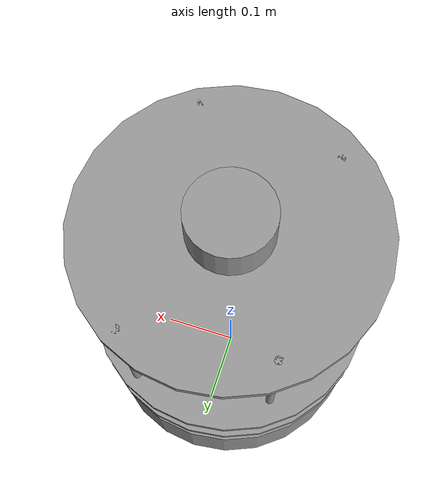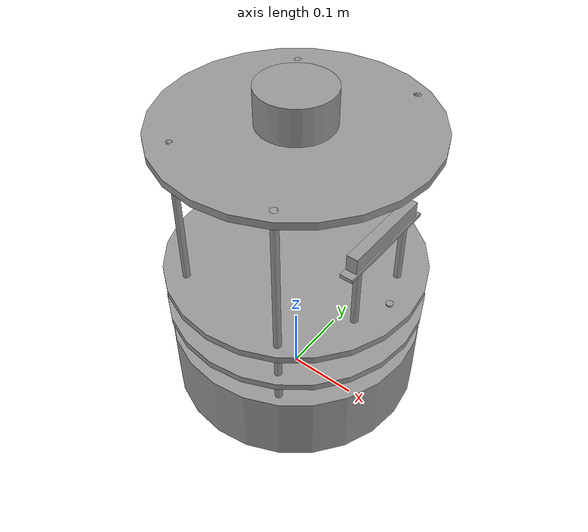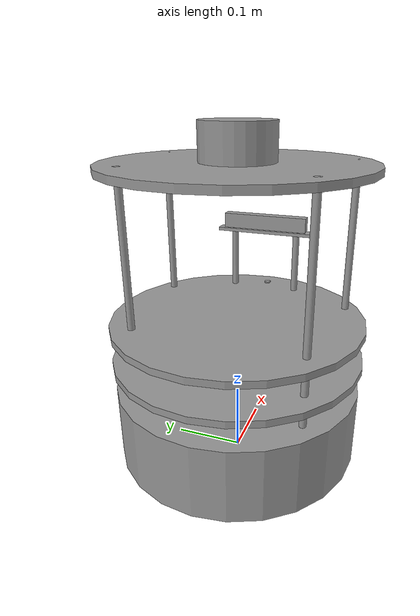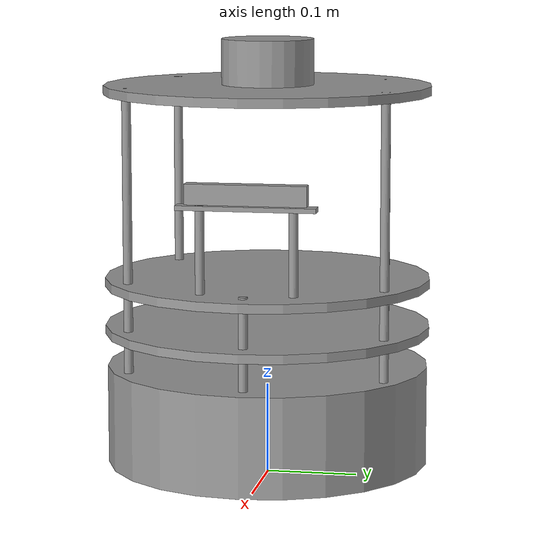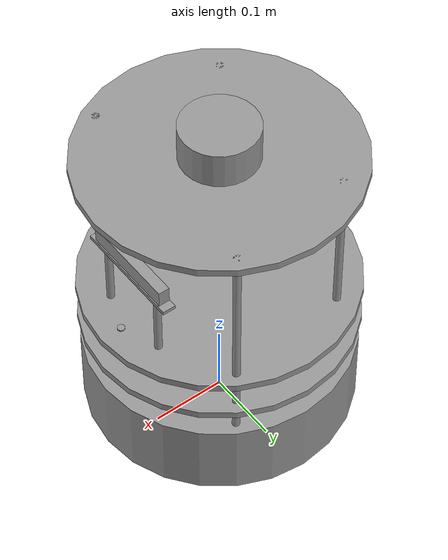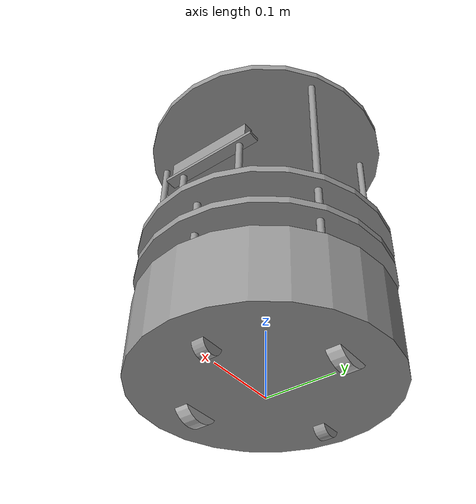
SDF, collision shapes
<?xml version="1.0" ?>
<sdf version='1.10'>
  <model name='turtlebot2'>
    <link name='base_footprint'>
      <inertial>
        <pose>0 -0.1 0.95 0 0 0</pose>
        <mass>80.0</mass>
        <inertia>
          <ixx>24.88</ixx>
          <ixy>0</ixy>
          <ixz>0</ixz>
          <iyy>25.73</iyy>
          <iyz>0</iyz>
          <izz>2.48</izz>
        </inertia>
      </inertial>

      <collision name='base_footprint_fixed_joint_lump__base_collision'>
        <pose>0 0 0.069690000000000002 0 0 0</pose>
        <geometry>
          <cylinder>
            <length>0.10938000000000001</length>
            <radius>0.17799999999999999</radius>
          </cylinder>
        </geometry>
      </collision>
      <collision name='base_footprint_fixed_joint_lump__base_collision_1'>
        <pose>0.080000000000000002 0.14000000000000001 0.26019999999999999 0 0 0</pose>
        <geometry>
          <cylinder>
            <length>0.34999999999999998</length>
            <radius>0.0050000000000000001</radius>
          </cylinder>
        </geometry>
      </collision>
      <collision name='base_footprint_fixed_joint_lump__base_collision_2'>
        <pose>-0.089999999999999997 0.12 0.26019999999999999 0 0 0</pose>
        <geometry>
          <cylinder>
            <length>0.34999999999999998</length>
            <radius>0.0050000000000000001</radius>
          </cylinder>
        </geometry>
      </collision>
      <collision name='base_footprint_fixed_joint_lump__base_collision_3'>
        <pose>-0.089999999999999997 -0.12 0.26019999999999999 0 0 0</pose>
        <geometry>
          <cylinder>
            <length>0.34999999999999998</length>
            <radius>0.0050000000000000001</radius>
          </cylinder>
        </geometry>
      </collision>
      <collision name='base_footprint_fixed_joint_lump__base_collision_4'>
        <pose>0.080000000000000002 -0.14000000000000001 0.26019999999999999 0 0 0</pose>
        <geometry>
          <cylinder>
            <length>0.34999999999999998</length>
            <radius>0.0050000000000000001</radius>
          </cylinder>
        </geometry>
      </collision>
      <collision name='base_footprint_fixed_joint_lump__base_collision_5'>
        <pose>0.14999999999999999 0 0.1502 0 0 0</pose>
        <geometry>
          <cylinder>
            <length>0.14999999999999999</length>
            <radius>0.0050000000000000001</radius>
          </cylinder>
        </geometry>
      </collision>
      <collision name='base_footprint_fixed_joint_lump__camera_link_collision_6'>
        <pose>0.13 0 0.33019999999999999 0 0 0</pose>
        <geometry>
          <box>
            <size>0.014999999999999999 0.13 0.021999999999999999</size>
          </box>
        </geometry>
        <surface>
          <contact>
            <ode/>
          </contact>
          <friction>
            <ode/>
          </friction>
        </surface>
      </collision>
      <collision name='base_footprint_fixed_joint_lump__caster_back_link_collision_7'>
        <pose>-0.13500000000000001 0 0.019199999999999998 -1.5707963267948959 0 0</pose>
        <geometry>
          <cylinder>
            <length>0.017600000000000001</length>
            <radius>0.017000000000000001</radius>
          </cylinder>
        </geometry>
        <surface>
          <contact>
            <ode>
              <kp>1000000</kp>
              <kd>100</kd>
              <max_vel>1</max_vel>
              <min_depth>0.001</min_depth>
            </ode>
          </contact>
          <friction>
            <ode>
              <mu>0</mu>
              <mu2>0</mu2>
            </ode>
          </friction>
        </surface>
      </collision>
      <collision name='base_footprint_fixed_joint_lump__caster_front_link_collision_8'>
        <pose>0.115 0 0.0172 -1.5707963267948959 0 0</pose>
        <geometry>
          <cylinder>
            <length>0.017600000000000001</length>
            <radius>0.017000000000000001</radius>
          </cylinder>
        </geometry>
        <surface>
          <contact>
            <ode>
              <kp>1000000</kp>
              <kd>100</kd>
              <max_vel>1</max_vel>
              <min_depth>0.001</min_depth>
            </ode>
          </contact>
          <friction>
            <ode>
              <mu>0</mu>
              <mu2>0</mu2>
            </ode>
          </friction>
        </surface>
      </collision>
      <collision name='base_footprint_fixed_joint_lump__base_collision_9'>
        <pose>0 0 0.16520000000000001 0 0 0</pose>
        <geometry>
          <cylinder>
            <length>0.01</length>
            <radius>0.17999999999999999</radius>
          </cylinder>
        </geometry>
      </collision>
      <collision name='base_footprint_fixed_joint_lump__base_collision_10'>
        <pose>0 0 0.21820000000000001 0 0 0</pose>
        <geometry>
          <cylinder>
            <length>0.01</length>
            <radius>0.17999999999999999</radius>
          </cylinder>
        </geometry>
      </collision>
      <collision name='base_footprint_fixed_joint_lump__base_collision_11'>
        <pose>0.13 0 0.31569999999999998 0 0 0</pose>
        <geometry>
          <box>
            <size>0.017500000000000002 0.14999999999999999 0.0050000000000000001</size>
          </box>
        </geometry>
      </collision>
      <collision name='base_footprint_fixed_joint_lump__base_collision_12'>
        <pose>0.13 0.050000000000000003 0.26819999999999999 0 0 0</pose>
        <geometry>
          <cylinder>
            <length>0.10000000000000001</length>
            <radius>0.0050000000000000001</radius>
          </cylinder>
        </geometry>
      </collision>
      <collision name='base_footprint_fixed_joint_lump__base_collision_13'>
        <pose>0.13 -0.050000000000000003 0.26819999999999999 0 0 0</pose>
        <geometry>
          <cylinder>
            <length>0.10000000000000001</length>
            <radius>0.0050000000000000001</radius>
          </cylinder>
        </geometry>
      </collision>
      <collision name='base_footprint_fixed_joint_lump__base_collision_14'>
        <pose>0 0 0.43020000000000003 0 0 0</pose>
        <geometry>
          <cylinder>
            <length>0.01</length>
            <radius>0.17999999999999999</radius>
          </cylinder>
        </geometry>
      </collision>
      <collision name='base_footprint_fixed_joint_lump__lidar_link_collision_15'>
        <pose>0 0 0.4577 0 0 0</pose>
        <geometry>
          <cylinder>
            <length>0.055</length>
            <radius>0.050799999999999998</radius>
          </cylinder>
        </geometry>
        <surface>
          <contact>
            <ode/>
          </contact>
          <friction>
            <ode/>
          </friction>
        </surface>
      </collision>
      <visual name='base_footprint_fixed_joint_lump__base_link_visual'>
        <pose>0.001 0 0.062190000000000002 0 0 0</pose>
        <geometry>
          <mesh>
            <scale>1 1 1</scale>
            <uri>model://kobuki_description/meshes/main_body.dae</uri>
          </mesh>
        </geometry>
      </visual>
      <visual name='base_footprint_fixed_joint_lump__base_tick1_link_visual_1'>
        <pose>0.080000000000000002 0.14000000000000001 0.26019999999999999 0 0 0</pose>
        <geometry>
          <cylinder>
            <length>0.34999999999999998</length>
            <radius>0.0050000000000000001</radius>
          </cylinder>
        </geometry>
        <material>
          <script>
            <name>Gazebo/Gray</name>
            <uri>file://media/materials/scripts/gazebo.material</uri>
          </script>
        </material>
      </visual>
      <visual name='base_footprint_fixed_joint_lump__base_tick2_link_visual_2'>
        <pose>-0.089999999999999997 0.12 0.26019999999999999 0 0 0</pose>
        <geometry>
          <cylinder>
            <length>0.34999999999999998</length>
            <radius>0.0050000000000000001</radius>
          </cylinder>
        </geometry>
        <material>
          <script>
            <name>Gazebo/Gray</name>
            <uri>file://media/materials/scripts/gazebo.material</uri>
          </script>
        </material>
      </visual>
      <visual name='base_footprint_fixed_joint_lump__base_tick3_link_visual_3'>
        <pose>-0.089999999999999997 -0.12 0.26019999999999999 0 0 0</pose>
        <geometry>
          <cylinder>
            <length>0.34999999999999998</length>
            <radius>0.0050000000000000001</radius>
          </cylinder>
        </geometry>
        <material>
          <script>
            <name>Gazebo/Gray</name>
            <uri>file://media/materials/scripts/gazebo.material</uri>
          </script>
        </material>
      </visual>
      <visual name='base_footprint_fixed_joint_lump__base_tick4_link_visual_4'>
        <pose>0.080000000000000002 -0.14000000000000001 0.26019999999999999 0 0 0</pose>
        <geometry>
          <cylinder>
            <length>0.34999999999999998</length>
            <radius>0.0050000000000000001</radius>
          </cylinder>
        </geometry>
        <material>
          <script>
            <name>Gazebo/Gray</name>
            <uri>file://media/materials/scripts/gazebo.material</uri>
          </script>
        </material>
      </visual>
      <visual name='base_footprint_fixed_joint_lump__base_tick5_link_visual_5'>
        <pose>0.14999999999999999 0 0.1502 0 0 0</pose>
        <geometry>
          <cylinder>
            <length>0.14999999999999999</length>
            <radius>0.0050000000000000001</radius>
          </cylinder>
        </geometry>
        <material>
          <script>
            <name>Gazebo/Gray</name>
            <uri>file://media/materials/scripts/gazebo.material</uri>
          </script>
        </material>
      </visual>
      <visual name='base_footprint_fixed_joint_lump__camera_link_visual_6'>
        <pose>0.13 0 0.33019999999999999 0 0 0</pose>
        <geometry>
          <box>
            <size>0.014999999999999999 0.13 0.021999999999999999</size>
          </box>
        </geometry>
        <material>
          <script>
            <name>Gazebo/Black</name>
            <uri>file://media/materials/scripts/gazebo.material</uri>
          </script>
        </material>
      </visual>
      <visual name='base_footprint_fixed_joint_lump__lower_base_link_visual_7'>
        <pose>0 0 0.16520000000000001 0 0 0</pose>
        <geometry>
          <cylinder>
            <length>0.01</length>
            <radius>0.17999999999999999</radius>
          </cylinder>
        </geometry>
        <material>
          <script>
            <name>Gazebo/DarkGrey</name>
            <uri>file://media/materials/scripts/gazebo.material</uri>
          </script>
        </material>
      </visual>
      <visual name='base_footprint_fixed_joint_lump__middle_base_link_visual_8'>
        <pose>0 0 0.21820000000000001 0 0 0</pose>
        <geometry>
          <cylinder>
            <length>0.01</length>
            <radius>0.17999999999999999</radius>
          </cylinder>
        </geometry>
        <material>
          <script>
            <name>Gazebo/DarkGrey</name>
            <uri>file://media/materials/scripts/gazebo.material</uri>
          </script>
        </material>
      </visual>
      <visual name='base_footprint_fixed_joint_lump__camera_support_base_link_visual_9'>
        <pose>0.13 0 0.31569999999999998 0 0 0</pose>
        <geometry>
          <box>
            <size>0.017500000000000002 0.14999999999999999 0.0050000000000000001</size>
          </box>
        </geometry>
        <material>
          <script>
            <name>Gazebo/DarkGrey</name>
            <uri>file://media/materials/scripts/gazebo.material</uri>
          </script>
        </material>
      </visual>
      <visual name='base_footprint_fixed_joint_lump__camera_support_tick1_link_visual_10'>
        <pose>0.13 0.050000000000000003 0.26819999999999999 0 0 0</pose>
        <geometry>
          <cylinder>
            <length>0.10000000000000001</length>
            <radius>0.0050000000000000001</radius>
          </cylinder>
        </geometry>
        <material>
          <script>
            <name>Gazebo/Gray</name>
            <uri>file://media/materials/scripts/gazebo.material</uri>
          </script>
        </material>
      </visual>
      <visual name='base_footprint_fixed_joint_lump__camera_support_tick2_link_visual_11'>
        <pose>0.13 -0.050000000000000003 0.26819999999999999 0 0 0</pose>
        <geometry>
          <cylinder>
            <length>0.10000000000000001</length>
            <radius>0.0050000000000000001</radius>
          </cylinder>
        </geometry>
        <material>
          <script>
            <name>Gazebo/Gray</name>
            <uri>file://media/materials/scripts/gazebo.material</uri>
          </script>
        </material>
      </visual>
      <visual name='base_footprint_fixed_joint_lump__upper_base_link_visual_12'>
        <pose>0 0 0.43020000000000003 0 0 0</pose>
        <geometry>
          <cylinder>
            <length>0.01</length>
            <radius>0.17999999999999999</radius>
          </cylinder>
        </geometry>
        <material>
          <script>
            <name>Gazebo/DarkGrey</name>
            <uri>file://media/materials/scripts/gazebo.material</uri>
          </script>
        </material>
      </visual>
      <visual name='base_footprint_fixed_joint_lump__lidar_link_visual_13'>
        <pose>0 0 0.4577 0 0 0</pose>
        <geometry>
          <cylinder>
            <length>0.055</length>
            <radius>0.050799999999999998</radius>
          </cylinder>
        </geometry>
        <material>
          <script>
            <name>Gazebo/Black</name>
            <uri>file://media/materials/scripts/gazebo.material</uri>
          </script>
        </material>
      </visual>
      <sensor name='bumpers' type='contact'>
        <always_on>true</always_on>
        <update_rate>50</update_rate>
        <visualize>true</visualize>
        <contact>
          <collision>base_footprint_fixed_joint_lump__base_collision</collision>
          <topic>__default_topic__</topic>
        </contact>
        <pose>0 0 0.010200000000000001 0 0 0</pose>
      </sensor>
      <sensor name='depth_camera' type='depth'>
        <visualize>true</visualize>
        <update_rate>30</update_rate>
        <camera name='camera'>
          <horizontal_fov>1.0471980000000001</horizontal_fov>
          <image>
            <width>640</width>
            <height>480</height>
            <format>R8G8B8</format>
          </image>
          <clip>
            <near>0.050000000000000003</near>
            <far>6</far>
          </clip>
        </camera>
        <plugin name='depth_camera_controller' filename='libgazebo_ros_camera.so'>
          <baseline>0.2</baseline>
          <alwaysOn>true</alwaysOn>
          <updateRate>0.0</updateRate>
          <frame_name>camera_depth_frame</frame_name>
          <pointCloudCutoff>0.5</pointCloudCutoff>
          <pointCloudCutoffMax>6.0</pointCloudCutoffMax>
          <distortionK1>0</distortionK1>
          <distortionK2>0</distortionK2>
          <distortionK3>0</distortionK3>
          <distortionT1>0</distortionT1>
          <distortionT2>0</distortionT2>
          <CxPrime>0</CxPrime>
          <Cx>0</Cx>
          <Cy>0</Cy>
          <focalLength>0</focalLength>
          <hackBaseline>0</hackBaseline>
        </plugin>
        <pose>0.13 0 0.33019999999999999 0 0 0</pose>
      </sensor>
      <sensor name='cliff_sensor_front' type='ray'>
        <always_on>true</always_on>
        <update_rate>50</update_rate>
        <visualize>true</visualize>
        <ray>
          <scan>
            <horizontal>
              <samples>50</samples>
              <resolution>1</resolution>
              <min_angle>-0.0436</min_angle>
              <max_angle>0.0436</max_angle>
            </horizontal>
          </scan>
          <range>
            <min>0.01</min>
            <max>0.14999999999999999</max>
            <resolution>1</resolution>
          </range>
        </ray>
        <pose>0.156 0 0.031600000000000003 3.1415926535897931 1.5707926536359933 3.1415926535897931</pose>
      </sensor>
      <sensor name='cliff_sensor_left' type='ray'>
        <always_on>true</always_on>
        <update_rate>50</update_rate>
        <visualize>true</visualize>
        <ray>
          <scan>
            <horizontal>
              <samples>50</samples>
              <resolution>1</resolution>
              <min_angle>-0.0436</min_angle>
              <max_angle>0.0436</max_angle>
            </horizontal>
          </scan>
          <range>
            <min>0.01</min>
            <max>0.14999999999999999</max>
            <resolution>1</resolution>
          </range>
        </ray>
        <pose>0.087340000000000001 0.13600999999999999 0.031600000000000003 3.1415926535897931 1.5707926536359933 3.1415926535897931</pose>
      </sensor>
      <sensor name='cliff_sensor_right' type='ray'>
        <always_on>true</always_on>
        <update_rate>50</update_rate>
        <visualize>true</visualize>
        <ray>
          <scan>
            <horizontal>
              <samples>50</samples>
              <resolution>1</resolution>
              <min_angle>-0.0436</min_angle>
              <max_angle>0.0436</max_angle>
            </horizontal>
          </scan>
          <range>
            <min>0.01</min>
            <max>0.14999999999999999</max>
            <resolution>1</resolution>
          </range>
        </ray>
        <pose>0.085000000000000006 -0.13600999999999999 0.031600000000000003 3.1415926535897931 1.5707926536359933 3.1415926535897931</pose>
      </sensor>
      <sensor name='imu' type='imu'>
        <plugin name='gazebo_ros_imu_controller' filename='libgazebo_ros_imu_sensor.so'>
          <ros>
            <argument>~/out:=imu</argument>
          </ros>
          <output_type>sensor_msgs/msg/Imu</output_type>
          <body_name>gyro_link</body_name>
          <frame_name>gyro_link</frame_name>
        </plugin>
        <always_on>true</always_on>
        <update_rate>50</update_rate>
        <visualize>false</visualize>
        <imu>
          <noise>
            <type>gaussian</type>
            <rate>
              <mean>0.0</mean>
              <stddev>1.96e-06</stddev>
              <bias_mean>0.0</bias_mean>
              <bias_stddev>0.0</bias_stddev>
            </rate>
            <accel>
              <mean>0.0</mean>
              <stddev>1.7e-2</stddev>
              <bias_mean>0.1</bias_mean>
              <bias_stddev>0.001</bias_stddev>
            </accel>
          </noise>
        </imu>
        <pose>0.056000000000000001 0.062 0.0304 0 0 0</pose>
      </sensor>
      <sensor name='lidar' type='ray'>
        <always_on>true</always_on>
        <visualize>true</visualize>
        <update_rate>5</update_rate>
        <ray>
          <scan>
            <horizontal>
              <samples>360</samples>
              <resolution>1</resolution>
              <min_angle>0</min_angle>
              <max_angle>6.2800000000000002</max_angle>
            </horizontal>
          </scan>
          <range>
            <min>0.12</min>
            <max>3.5</max>
            <resolution>0.014999999999999999</resolution>
          </range>
          <noise>
            <type>gaussian</type>
            <mean>0</mean>
            <stddev>0.01</stddev>
          </noise>
        </ray>
        <plugin name='scan' filename='libgazebo_ros_ray_sensor.so'>
          <ros>
            <remapping>~/out:=scan</remapping>
          </ros>
          <output_type>sensor_msgs/LaserScan</output_type>
          <frame_name>lidar_link</frame_name>
        </plugin>
        <pose>0 0 0.4577 0 0 0</pose>
      </sensor>
    </link>
    <joint name='wheel_left_joint' type='revolute'>
      <pose relative_to='base_footprint'>0 0.115 0.035200000000000002 -1.5707963267948959 0 0</pose>
      <parent>base_footprint</parent>
      <child>wheel_left_link</child>
      <axis>
        <xyz>0 0 1</xyz>
        <limit>
          <lower>-inf</lower>
          <upper>inf</upper>
        </limit>
        <dynamics>
          <spring_reference>0</spring_reference>
          <spring_stiffness>0</spring_stiffness>
        </dynamics>
      </axis>
    </joint>
    <link name='wheel_left_link'>
      <pose relative_to='wheel_left_joint'>0 0 0 0 0 0</pose>
      <inertial>
        <pose>0 0 0 0 0 0</pose>
        <mass>0.01</mass>
        <inertia>
          <ixx>0.001</ixx>
          <ixy>0</ixy>
          <ixz>0</ixz>
          <iyy>0.001</iyy>
          <iyz>0</iyz>
          <izz>0.001</izz>
        </inertia>
      </inertial>
      <collision name='wheel_left_link_collision'>
        <pose>0 0 0 0 0 0</pose>
        <geometry>
          <cylinder>
            <length>0.0206</length>
            <radius>0.035000000000000003</radius>
          </cylinder>
        </geometry>
        <surface>
          <contact>
            <ode>
              <kp>1000000</kp>
              <kd>100</kd>
              <max_vel>1</max_vel>
              <min_depth>0.001</min_depth>
            </ode>
          </contact>
          <friction>
            <ode>
              <mu>1</mu>
              <mu2>1</mu2>
            </ode>
          </friction>
        </surface>
      </collision>
      <visual name='wheel_left_link_visual'>
        <pose>0 0 0 0 0 0</pose>
        <geometry>
          <mesh>
            <scale>1 1 1</scale>
            <uri>model://kobuki_description/meshes/wheel.dae</uri>
          </mesh>
        </geometry>
      </visual>
    </link>
    <joint name='wheel_right_joint' type='revolute'>
      <pose relative_to='base_footprint'>0 -0.115 0.035200000000000002 -1.5707963267948959 0 0</pose>
      <parent>base_footprint</parent>
      <child>wheel_right_link</child>
      <axis>
        <xyz>0 0 1</xyz>
        <limit>
          <lower>-inf</lower>
          <upper>inf</upper>
        </limit>
        <dynamics>
          <spring_reference>0</spring_reference>
          <spring_stiffness>0</spring_stiffness>
        </dynamics>
      </axis>
    </joint>
    <link name='wheel_right_link'>
      <pose relative_to='wheel_right_joint'>0 0 0 0 0 0</pose>
      <inertial>
        <pose>0 0 0 0 0 0</pose>
        <mass>0.01</mass>
        <inertia>
          <ixx>0.001</ixx>
          <ixy>0</ixy>
          <ixz>0</ixz>
          <iyy>0.001</iyy>
          <iyz>0</iyz>
          <izz>0.001</izz>
        </inertia>
      </inertial>
      <collision name='wheel_right_link_collision'>
        <pose>0 0 0 0 0 0</pose>
        <geometry>
          <cylinder>
            <length>0.0206</length>
            <radius>0.035000000000000003</radius>
          </cylinder>
        </geometry>
        <surface>
          <contact>
            <ode>
              <kp>1000000</kp>
              <kd>100</kd>
              <max_vel>1</max_vel>
              <min_depth>0.001</min_depth>
            </ode>
          </contact>
          <friction>
            <ode>
              <mu>1</mu>
              <mu2>1</mu2>
            </ode>
          </friction>
        </surface>
      </collision>
      <visual name='wheel_right_link_visual'>
        <pose>0 0 0 0 0 0</pose>
        <geometry>
          <mesh>
            <scale>1 1 1</scale>
            <uri>model://kobuki_description/meshes/wheel.dae</uri>
          </mesh>
        </geometry>
      </visual>
    </link>
    <plugin name='differential_drive_controller' filename='libgazebo_ros_diff_drive.so'>
      <update_rate>10</update_rate>
      <left_joint>wheel_left_joint</left_joint>
      <right_joint>wheel_right_joint</right_joint>
      <wheel_separation>0.230</wheel_separation>
      <wheel_diameter>0.070</wheel_diameter>
      <max_wheel_torque>1.0</max_wheel_torque>
      <max_wheel_acceleration>1.0</max_wheel_acceleration>
      <command_topic>cmd_vel</command_topic>
      <publish_odom>true</publish_odom>
      <publish_odom_tf>true</publish_odom_tf>
      <publish_wheel_tf>true</publish_wheel_tf>
      <odometry_topic>odom</odometry_topic>
      <odometry_frame>odom</odometry_frame>
      <robot_base_frame>base_link</robot_base_frame>
    </plugin>
    <frame name='base_tick1_joint' attached_to='base_link'>
      <pose>0.080000000000000002 0.14000000000000001 0.25 0 0 0</pose>
    </frame>
    <frame name='base_tick1_link' attached_to='base_tick1_joint'>
      <pose>0 0 0 0 0 0</pose>
    </frame>
    <frame name='base_tick2_joint' attached_to='base_link'>
      <pose>-0.089999999999999997 0.12 0.25 0 0 0</pose>
    </frame>
    <frame name='base_tick2_link' attached_to='base_tick2_joint'>
      <pose>0 0 0 0 0 0</pose>
    </frame>
    <frame name='base_tick3_joint' attached_to='base_link'>
      <pose>-0.089999999999999997 -0.12 0.25 0 0 0</pose>
    </frame>
    <frame name='base_tick3_link' attached_to='base_tick3_joint'>
      <pose>0 0 0 0 0 0</pose>
    </frame>
    <frame name='base_tick4_joint' attached_to='base_link'>
      <pose>0.080000000000000002 -0.14000000000000001 0.25 0 0 0</pose>
    </frame>
    <frame name='base_tick4_link' attached_to='base_tick4_joint'>
      <pose>0 0 0 0 0 0</pose>
    </frame>
    <frame name='base_tick5_joint' attached_to='base_link'>
      <pose>0.14999999999999999 0 0.14000000000000001 0 0 0</pose>
    </frame>
    <frame name='base_tick5_link' attached_to='base_tick5_joint'>
      <pose>0 0 0 0 0 0</pose>
    </frame>
    <frame name='camera_depth_joint' attached_to='camera_link'>
      <pose>0 0 0 -1.5707963267948959 -5.5511151231257827e-17 -1.5707963267948959</pose>
    </frame>
    <frame name='camera_depth_frame' attached_to='camera_depth_joint'>
      <pose>0 0 0 0 0 0</pose>
    </frame>
    <frame name='camera_joint' attached_to='base_link'>
      <pose>0.13 0 0.32000000000000001 0 0 0</pose>
    </frame>
    <frame name='camera_link' attached_to='camera_joint'>
      <pose>0 0 0 0 0 0</pose>
    </frame>
    <frame name='caster_back_joint' attached_to='base_link'>
      <pose>-0.13500000000000001 0 0.0089999999999999993 -1.5707963267948959 0 0</pose>
    </frame>
    <frame name='caster_back_link' attached_to='caster_back_joint'>
      <pose>0 0 0 0 0 0</pose>
    </frame>
    <frame name='caster_front_joint' attached_to='base_link'>
      <pose>0.115 0 0.0070000000000000001 -1.5707963267948959 0 0</pose>
    </frame>
    <frame name='caster_front_link' attached_to='caster_front_joint'>
      <pose>0 0 0 0 0 0</pose>
    </frame>
    <frame name='cliff_sensor_front_joint' attached_to='base_link'>
      <pose>0.156 0 0.021399999999999999 0 1.5707963267948966 0</pose>
    </frame>
    <frame name='cliff_sensor_front_link' attached_to='cliff_sensor_front_joint'>
      <pose>0 0 0 0 0 0</pose>
    </frame>
    <frame name='cliff_sensor_left_joint' attached_to='base_link'>
      <pose>0.087340000000000001 0.13600999999999999 0.021399999999999999 0 1.5707963267948966 0</pose>
    </frame>
    <frame name='cliff_sensor_left_link' attached_to='cliff_sensor_left_joint'>
      <pose>0 0 0 0 0 0</pose>
    </frame>
    <frame name='cliff_sensor_right_joint' attached_to='base_link'>
      <pose>0.085000000000000006 -0.13600999999999999 0.021399999999999999 0 1.5707963267948966 0</pose>
    </frame>
    <frame name='cliff_sensor_right_link' attached_to='cliff_sensor_right_joint'>
      <pose>0 0 0 0 0 0</pose>
    </frame>
    <frame name='gyro_joint' attached_to='base_link'>
      <pose>0.056000000000000001 0.062 0.020199999999999999 0 0 0</pose>
    </frame>
    <frame name='gyro_link' attached_to='gyro_joint'>
      <pose>0 0 0 0 0 0</pose>
    </frame>
    <frame name='lower_base_joint' attached_to='base_link'>
      <pose>0 0 0.155 0 0 0</pose>
    </frame>
    <frame name='lower_base_link' attached_to='lower_base_joint'>
      <pose>0 0 0 0 0 0</pose>
    </frame>
    <frame name='camera_support_base_joint' attached_to='middle_base_link'>
      <pose>0.13 0 0.097500000000000003 0 0 0</pose>
    </frame>
    <frame name='camera_support_base_link' attached_to='camera_support_base_joint'>
      <pose>0 0 0 0 0 0</pose>
    </frame>
    <frame name='camera_support_tick1_joint' attached_to='middle_base_link'>
      <pose>0.13 0.050000000000000003 0.050000000000000003 0 0 0</pose>
    </frame>
    <frame name='camera_support_tick1_link' attached_to='camera_support_tick1_joint'>
      <pose>0 0 0 0 0 0</pose>
    </frame>
    <frame name='camera_support_tick2_joint' attached_to='middle_base_link'>
      <pose>0.13 -0.050000000000000003 0.050000000000000003 0 0 0</pose>
    </frame>
    <frame name='camera_support_tick2_link' attached_to='camera_support_tick2_joint'>
      <pose>0 0 0 0 0 0</pose>
    </frame>
    <frame name='middle_base_joint' attached_to='base_link'>
      <pose>0 0 0.20799999999999999 0 0 0</pose>
    </frame>
    <frame name='middle_base_link' attached_to='middle_base_joint'>
      <pose>0 0 0 0 0 0</pose>
    </frame>
    <frame name='lidar_joint' attached_to='upper_base_link'>
      <pose>0 0 0.0275 0 0 0</pose>
    </frame>
    <frame name='lidar_link' attached_to='lidar_joint'>
      <pose>0 0 0 0 0 0</pose>
    </frame>
    <frame name='upper_base_joint' attached_to='base_link'>
      <pose>0 0 0.41999999999999998 0 0 0</pose>
    </frame>
    <frame name='upper_base_link' attached_to='upper_base_joint'>
      <pose>0 0 0 0 0 0</pose>
    </frame>
    <static>false</static>
    <frame name='base_joint' attached_to='base_footprint'>
      <pose>0 0 0.010200000000000001 0 0 0</pose>
    </frame>
    <frame name='base_link' attached_to='base_joint'>
      <pose>0 0 0 0 0 0</pose>
    </frame>
  </model>
</sdf>
